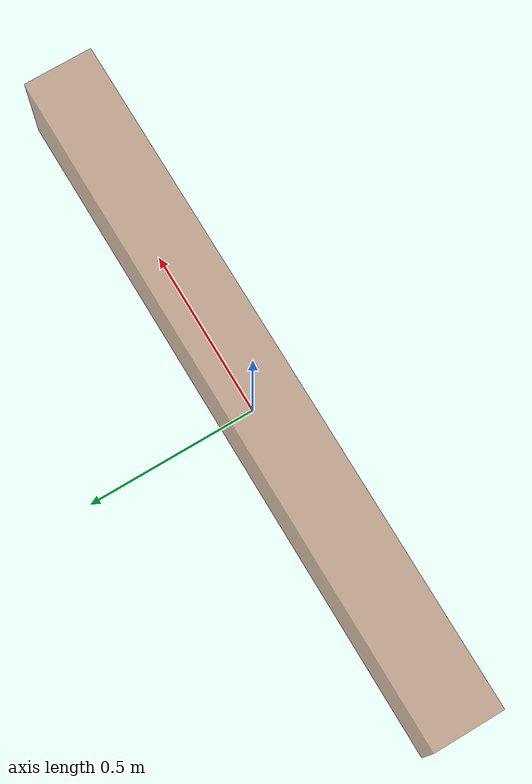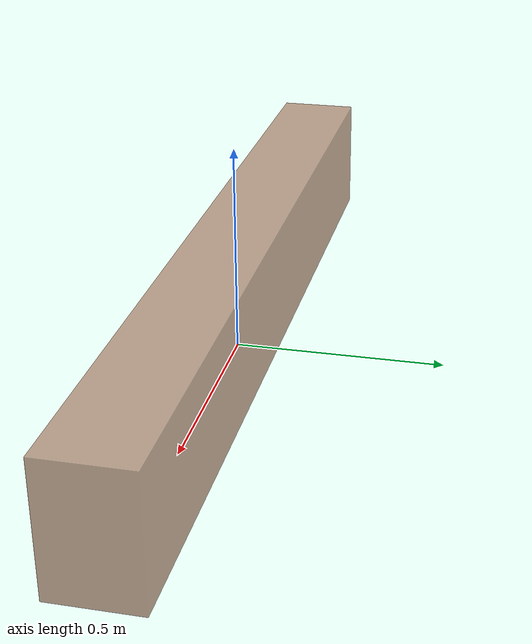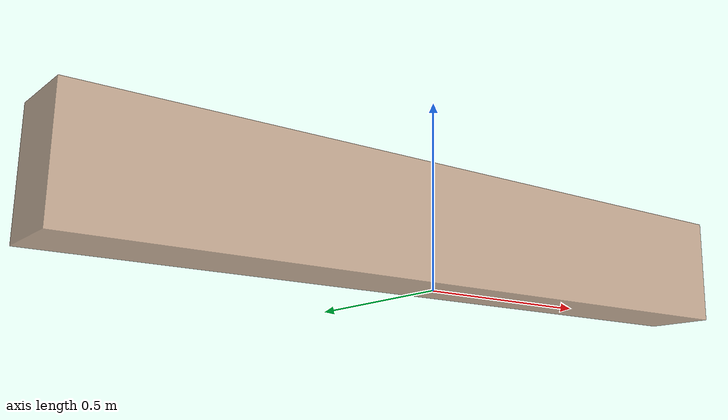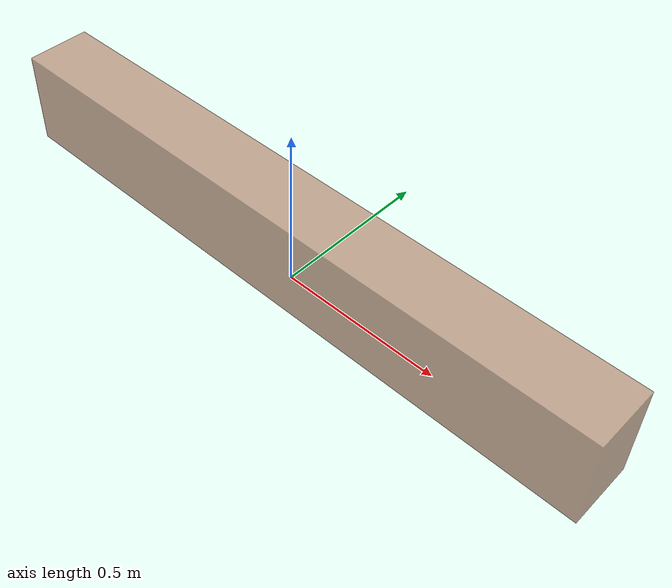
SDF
<sdf version='1.6'>
  <model name='wall'>

  <link name="wall">
  <pose> 0 0 0 0 0 0</pose>

  <visual name='visual'>
    <pose> 0 0 0.15 0 0 0 </pose>
    <geometry>
      <box>
       <size>2.0 0.2 0.3</size>
      </box>
    </geometry>
    <material>
      <diffuse>0.75 0.6 0.5 0.8</diffuse>
    </material>
  </visual>

  <collision name='collision'>
    <pose> 0 0 0.15 0 0 0 </pose>
    <geometry>
      <box>
       <size>2.0 0.2 0.3</size>
      </box>
    </geometry>

    <surface>
      <friction>
      <ode>
        <mu>0.5</mu>
        <mu2>0.5</mu2>
      </ode>
      </friction>
    </surface>
  </collision>
  </link>

  </model>
</sdf>
